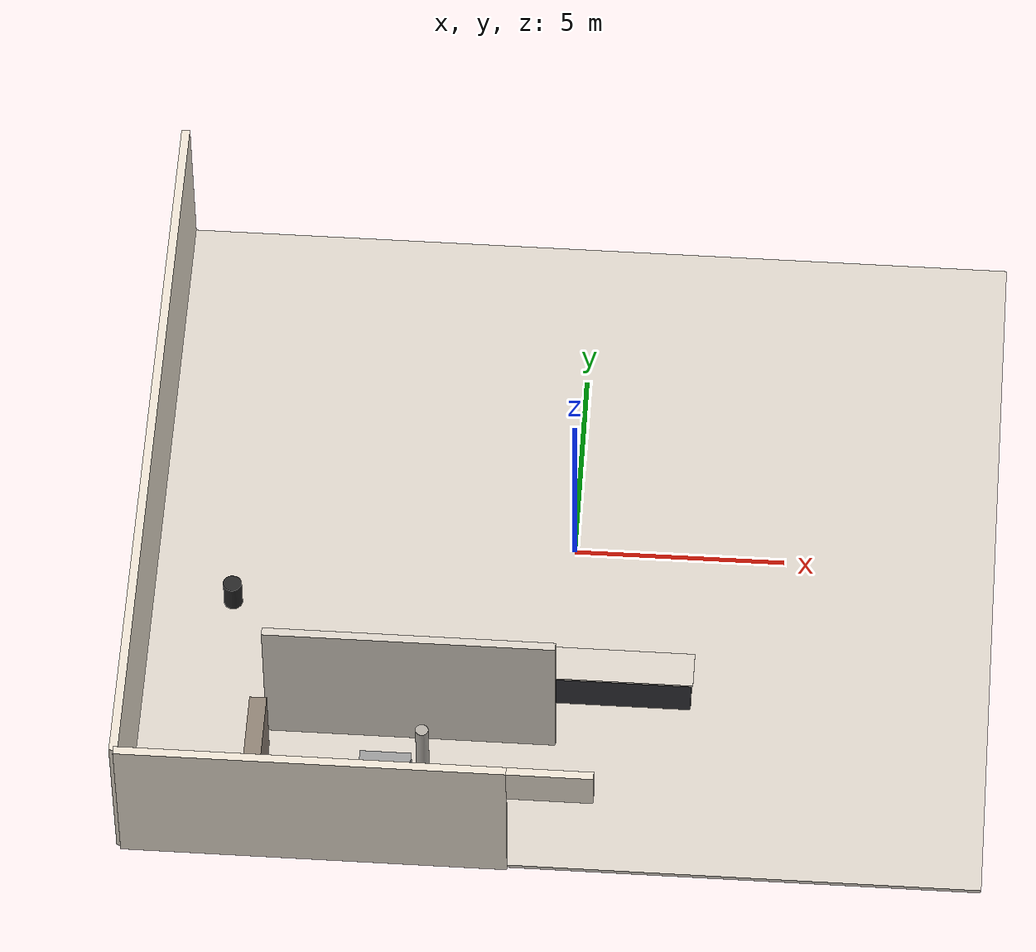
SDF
<sdf version="1.9">
 <world name="fast_food_cafe">
  <model name="floor">
   <static>true</static>
   <link name="floor_link">
    <collision name="floor_collision">
     <geometry><box><size>20 18 0.1</size></box></geometry>
     <surface>
      <contact><ode><kp>1e6</kp><kd>1e2</kd></ode></contact>
      <friction><ode><mu>0.9</mu><mu2>0.9</mu2></ode></friction>
      <bounce><restitution_coefficient>0.0</restitution_coefficient><threshold>1e6</threshold></bounce>
     </surface>
    </collision>
    <visual name="floor_visual">
     <geometry><box><size>20 18 0.1</size></box></geometry>
     <material>
      <ambient>0.85 0.82 0.78 1</ambient>
      <diffuse>0.85 0.82 0.78 1</diffuse>
      <specular>0.3 0.3 0.3 1</specular>
     </material>
    </visual>
    <inertial>
     <mass>1000</mass>
     <inertia><ixx>1</ixx><iyy>1</iyy><izz>1</izz><ixy>0</ixy><ixz>0</ixz><iyz>0</iyz></inertia>
    </inertial>
   </link>
  </model>
  <model name="wall_south_left">
   <static>true</static>
   <pose>-5.5 -9 2.0 0 0 0</pose>
   <link name="link">
    <collision name="col">
     <geometry><box><size>9 0.2 4.0</size></box></geometry>
     <surface><friction><ode><mu>0.8</mu><mu2>0.8</mu2></ode></friction></surface>
    </collision>
    <visual name="vis">
     <geometry><box><size>9 0.2 4.0</size></box></geometry>
     <material>
      <ambient>0.92 0.88 0.82 1</ambient>
      <diffuse>0.92 0.88 0.82 1</diffuse>
      <specular>0.1 0.1 0.1 1</specular>
     </material>
    </visual>
    <inertial>
     <mass>300</mass>
     <inertia><ixx>1</ixx><iyy>1</iyy><izz>1</izz><ixy>0</ixy><ixz>0</ixz><iyz>0</iyz></inertia>
    </inertial>
   </link>
  </model>
  <model name="wall_south_lintel">
   <static>true</static>
   <pose>0 -9 3.5 0 0 0</pose>
   <link name="link">
    <collision name="col"><geometry><box><size>2 0.2 1.0</size></box></geometry></collision>
    <visual name="vis">
     <geometry><box><size>2 0.2 1.0</size></box></geometry>
     <material><ambient>0.92 0.88 0.82 1</ambient><diffuse>0.92 0.88 0.82 1</diffuse></material>
    </visual>
    <inertial>
     <mass>50</mass>
     <inertia><ixx>1</ixx><iyy>1</iyy><izz>1</izz><ixy>0</ixy><ixz>0</ixz><iyz>0</iyz></inertia>
    </inertial>
   </link>
  </model>
  <model name="wall_west">
   <static>true</static>
   <pose>-10 0 2.0 0 0 0</pose>
   <link name="link">
    <collision name="col">
     <geometry><box><size>0.2 18 4.0</size></box></geometry>
     <surface><friction><ode><mu>0.8</mu><mu2>0.8</mu2></ode></friction></surface>
    </collision>
    <visual name="vis">
     <geometry><box><size>0.2 18 4.0</size></box></geometry>
     <material>
      <ambient>0.92 0.88 0.82 1</ambient>
      <diffuse>0.92 0.88 0.82 1</diffuse>
      <specular>0.1 0.1 0.1 1</specular>
     </material>
    </visual>
    <inertial>
     <mass>500</mass>
     <inertia><ixx>1</ixx><iyy>1</iyy><izz>1</izz><ixy>0</ixy><ixz>0</ixz><iyz>0</iyz></inertia>
    </inertial>
   </link>
  </model>
  <model name="kitchen_partition_left">
   <static>true</static>
   <pose>-3.5 -5.5 2.0 0 0 0</pose>
   <link name="link">
    <collision name="col">
     <geometry><box><size>6.8 0.2 4.0</size></box></geometry>
     <surface><friction><ode><mu>0.8</mu><mu2>0.8</mu2></ode></friction></surface>
    </collision>
    <visual name="vis">
     <geometry><box><size>6.8 0.2 4.0</size></box></geometry>
     <material>
      <ambient>0.85 0.82 0.78 1</ambient>
      <diffuse>0.85 0.82 0.78 1</diffuse>
      <specular>0.15 0.15 0.15 1</specular>
     </material>
    </visual>
    <inertial>
     <mass>200</mass>
     <inertia><ixx>1</ixx><iyy>1</iyy><izz>1</izz><ixy>0</ixy><ixz>0</ixz><iyz>0</iyz></inertia>
    </inertial>
   </link>
  </model>
  <model name="service_counter">
   <static>true</static>
   <pose>0 -4 0.55 0 0 0</pose>
   <link name="link">
    <collision name="col">
     <geometry><box><size>6 0.8 1.1</size></box></geometry>
     <surface><friction><ode><mu>0.7</mu><mu2>0.7</mu2></ode></friction></surface>
    </collision>
    <visual name="vis">
     <geometry><box><size>6 0.8 1.1</size></box></geometry>
     <material>
      <ambient>0.2 0.2 0.22 1</ambient>
      <diffuse>0.2 0.2 0.22 1</diffuse>
      <specular>0.5 0.5 0.5 1</specular>
     </material>
    </visual>
    <inertial>
     <mass>200</mass>
     <inertia><ixx>10</ixx><iyy>10</iyy><izz>10</izz><ixy>0</ixy><ixz>0</ixz><iyz>0</iyz></inertia>
    </inertial>
   </link>
  </model>
  <model name="counter_top">
   <static>true</static>
   <pose>0 -4 1.11 0 0 0</pose>
   <link name="link">
    <collision name="col"><geometry><box><size>6.1 0.9 0.05</size></box></geometry></collision>
    <visual name="vis">
     <geometry><box><size>6.1 0.9 0.05</size></box></geometry>
     <material>
      <ambient>0.85 0.82 0.78 1</ambient>
      <diffuse>0.85 0.82 0.78 1</diffuse>
      <specular>0.6 0.6 0.6 1</specular>
     </material>
    </visual>
    <inertial>
     <mass>30</mass>
     <inertia><ixx>1</ixx><iyy>1</iyy><izz>1</izz><ixy>0</ixy><ixz>0</ixz><iyz>0</iyz></inertia>
    </inertial>
   </link>
  </model>
  <model name="cash_register_1">
   <static>true</static>
   <pose>-1.5 -4 1.25 0 0 0</pose>
   <link name="link">
    <collision name="col"><geometry><box><size>0.3 0.25 0.25</size></box></geometry></collision>
    <visual name="vis">
     <geometry><box><size>0.3 0.25 0.25</size></box></geometry>
     <material>
      <ambient>0.1 0.1 0.1 1</ambient>
      <diffuse>0.1 0.1 0.1 1</diffuse>
      <specular>0.4 0.4 0.4 1</specular>
     </material>
    </visual>
    <inertial>
     <mass>3</mass>
     <inertia><ixx>0.01</ixx><iyy>0.01</iyy><izz>0.01</izz><ixy>0</ixy><ixz>0</ixz><iyz>0</iyz></inertia>
    </inertial>
   </link>
  </model>
  <model name="fryer_unit">
   <static>true</static>
   <pose>-4 -7 0.45 0 0 0</pose>
   <link name="link">
    <collision name="col">
     <geometry><box><size>1.2 0.8 0.9</size></box></geometry>
     <surface><friction><ode><mu>0.7</mu><mu2>0.7</mu2></ode></friction></surface>
    </collision>
    <visual name="vis">
     <geometry><box><size>1.2 0.8 0.9</size></box></geometry>
     <material>
      <ambient>0.6 0.6 0.6 1</ambient>
      <diffuse>0.6 0.6 0.6 1</diffuse>
      <specular>0.9 0.9 0.9 1</specular>
     </material>
    </visual>
    <inertial>
     <mass>80</mass>
     <inertia><ixx>2</ixx><iyy>2</iyy><izz>2</izz><ixy>0</ixy><ixz>0</ixz><iyz>0</iyz></inertia>
    </inertial>
   </link>
  </model>
  <model name="kitchen_shelf">
   <static>true</static>
   <pose>-7 -7 1.0 0 0 0</pose>
   <link name="link">
    <collision name="col">
     <geometry><box><size>0.4 2.0 2.0</size></box></geometry>
     <surface><friction><ode><mu>0.6</mu><mu2>0.6</mu2></ode></friction></surface>
    </collision>
    <visual name="vis">
     <geometry><box><size>0.4 2.0 2.0</size></box></geometry>
     <material>
      <ambient>0.55 0.5 0.45 1</ambient>
      <diffuse>0.55 0.5 0.45 1</diffuse>
      <specular>0.3 0.3 0.3 1</specular>
     </material>
    </visual>
    <inertial>
     <mass>40</mass>
     <inertia><ixx>3</ixx><iyy>3</iyy><izz>3</izz><ixy>0</ixy><ixz>0</ixz><iyz>0</iyz></inertia>
    </inertial>
   </link>
  </model>
  <model name="trash_bin_1">
   <static>false</static>
   <pose>-8 -2 0.4 0 0 0</pose>
   <link name="link">
    <collision name="col">
     <geometry><cylinder><radius>0.22</radius><length>0.8</length></cylinder></geometry>
     <surface>
      <contact><ode><kp>1e5</kp><kd>10</kd></ode></contact>
      <friction><ode><mu>0.8</mu><mu2>0.8</mu2></ode></friction>
     </surface>
    </collision>
    <visual name="vis">
     <geometry><cylinder><radius>0.22</radius><length>0.8</length></cylinder></geometry>
     <material>
      <ambient>0.15 0.15 0.15 1</ambient>
      <diffuse>0.15 0.15 0.15 1</diffuse>
      <specular>0.3 0.3 0.3 1</specular>
     </material>
    </visual>
    <inertial>
     <mass>5</mass>
     <inertia><ixx>0.18</ixx><iyy>0.18</iyy><izz>0.12</izz><ixy>0</ixy><ixz>0</ixz><iyz>0</iyz></inertia>
    </inertial>
   </link>
  </model>
  <model name="tray_dispenser">
   <static>true</static>
   <pose>-3 -4.8 0.85 0 0 0</pose>
   <link name="link">
    <collision name="col"><geometry><box><size>0.4 0.3 0.4</size></box></geometry></collision>
    <visual name="vis">
     <geometry><box><size>0.4 0.3 0.4</size></box></geometry>
     <material>
      <ambient>0.3 0.3 0.3 1</ambient>
      <diffuse>0.3 0.3 0.3 1</diffuse>
      <specular>0.5 0.5 0.5 1</specular>
     </material>
    </visual>
    <inertial>
     <mass>4</mass>
     <inertia><ixx>0.05</ixx><iyy>0.05</iyy><izz>0.05</izz><ixy>0</ixy><ixz>0</ixz><iyz>0</iyz></inertia>
    </inertial>
   </link>
  </model>
  <model name="column_1">
   <static>true</static>
   <pose>-3 -8 2.0 0 0 0</pose>
   <link name="link">
    <collision name="col">
     <geometry><cylinder><radius>0.15</radius><length>4.0</length></cylinder></geometry>
    </collision>
    <visual name="vis">
     <geometry><cylinder><radius>0.15</radius><length>4.0</length></cylinder></geometry>
     <material>
      <ambient>0.7 0.68 0.65 1</ambient>
      <diffuse>0.7 0.68 0.65 1</diffuse>
      <specular>0.2 0.2 0.2 1</specular>
     </material>
    </visual>
    <inertial>
     <mass>100</mass>
     <inertia><ixx>5</ixx><iyy>5</iyy><izz>5</izz><ixy>0</ixy><ixz>0</ixz><iyz>0</iyz></inertia>
    </inertial>
   </link>
  </model>
  <model name="waiting_bench">
   <static>true</static>
   <pose>-7 -7.5 0.25 0 0 0</pose>
   <link name="link">
    <collision name="col_seat"><geometry><box><size>1.5 0.4 0.05</size></box></geometry></collision>
    <collision name="col_back">
     <pose>0 -0.17 0.3 0 0 0</pose>
     <geometry><box><size>1.5 0.05 0.55</size></box></geometry>
    </collision>
    <collision name="col_leg_l">
     <pose>0.65 0 -0.22 0 0 0</pose>
     <geometry><box><size>0.05 0.38 0.44</size></box></geometry>
    </collision>
    <collision name="col_leg_r">
     <pose>-0.65 0 -0.22 0 0 0</pose>
     <geometry><box><size>0.05 0.38 0.44</size></box></geometry>
    </collision>
    <visual name="vis_seat">
     <geometry><box><size>1.5 0.4 0.05</size></box></geometry>
     <material>
      <ambient>0.4 0.35 0.28 1</ambient>
      <diffuse>0.4 0.35 0.28 1</diffuse>
      <specular>0.2 0.2 0.2 1</specular>
     </material>
    </visual>
    <visual name="vis_back">
     <pose>0 -0.17 0.3 0 0 0</pose>
     <geometry><box><size>1.5 0.05 0.55</size></box></geometry>
     <material><ambient>0.4 0.35 0.28 1</ambient><diffuse>0.4 0.35 0.28 1</diffuse></material>
    </visual>
    <visual name="vis_leg_l">
     <pose>0.65 0 -0.22 0 0 0</pose>
     <geometry><box><size>0.05 0.38 0.44</size></box></geometry>
     <material><ambient>0.35 0.35 0.35 1</ambient><diffuse>0.35 0.35 0.35 1</diffuse></material>
    </visual>
    <visual name="vis_leg_r">
     <pose>-0.65 0 -0.22 0 0 0</pose>
     <geometry><box><size>0.05 0.38 0.44</size></box></geometry>
     <material><ambient>0.35 0.35 0.35 1</ambient><diffuse>0.35 0.35 0.35 1</diffuse></material>
    </visual>
    <inertial>
     <mass>20</mass>
     <inertia><ixx>1</ixx><iyy>1</iyy><izz>1</izz><ixy>0</ixy><ixz>0</ixz><iyz>0</iyz></inertia>
    </inertial>
   </link>
  </model>
  <model name="stanchion_1">
   <static>true</static>
   <pose>-2 -3.5 0.5 0 0 0</pose>
   <link name="link">
    <collision name="col">
     <geometry><cylinder><radius>0.04</radius><length>1.0</length></cylinder></geometry>
    </collision>
    <visual name="vis">
     <geometry><cylinder><radius>0.04</radius><length>1.0</length></cylinder></geometry>
     <material>
      <ambient>0.75 0.65 0.2 1</ambient>
      <diffuse>0.75 0.65 0.2 1</diffuse>
      <specular>0.8 0.8 0.3 1</specular>
     </material>
    </visual>
    <inertial>
     <mass>3</mass>
     <inertia><ixx>0.05</ixx><iyy>0.05</iyy><izz>0.02</izz><ixy>0</ixy><ixz>0</ixz><iyz>0</iyz></inertia>
    </inertial>
   </link>
  </model>
 </world>
</sdf>
